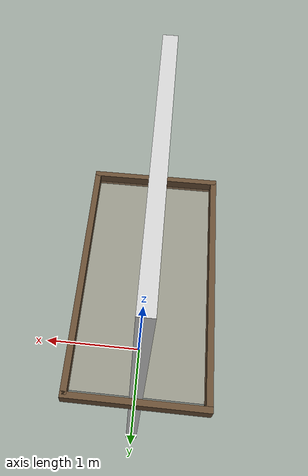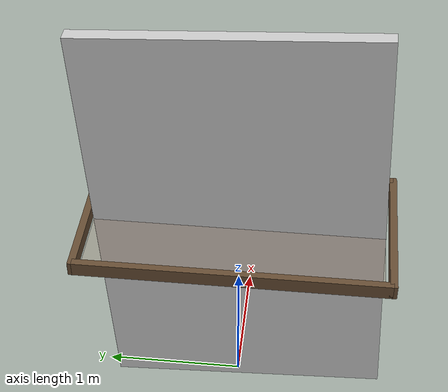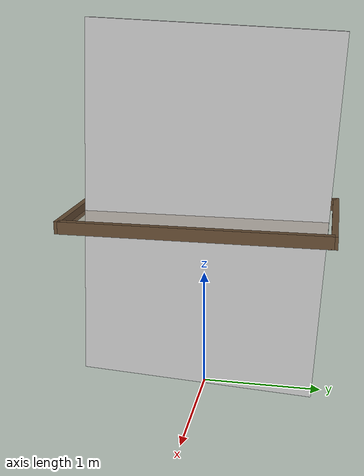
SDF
<?xml version="1.0"?>
<!--
  Environnement de test simple : Vitre unique 1×2m
  Utilisé pour les tests basiques de navigation et nettoyage
-->
<sdf version="1.7">
<world name="simple_window">

  <!-- Éclairage -->
  <include>
    <uri>model://sun</uri>
  </include>

  <!-- Environnement -->
  <scene>
    <ambient>0.8 0.8 0.8 1</ambient>
    <background>0.9 0.9 0.95 1</background>
    <shadows>true</shadows>
  </scene>

  <!-- Physique -->
  <physics type="ode">
    <real_time_factor>1.0</real_time_factor>
    <real_time_update_rate>1000</real_time_update_rate>
    <max_step_size>0.001</max_step_size>
    <gravity>0 0 -9.81</gravity>
  </physics>

  <!-- ==========================================
       VITRE PRINCIPALE (1×2 m)
       ========================================== -->
  <model name="main_window">
    <pose>0 0 1.5 0 0 0</pose>
    <static>true</static>

    <link name="glass_pane">
      <pose>0 0 0 0 0 0</pose>

      <collision name="collision">
        <geometry>
          <box>
            <size>1.0 2.0 0.01</size>
          </box>
        </geometry>
        <surface>
          <friction>
            <ode>
              <mu>0.1</mu>
              <mu2>0.1</mu2>
            </ode>
          </friction>
          <contact>
            <ode>
              <kp>1000000</kp>
              <kd>100</kd>
            </ode>
          </contact>
        </surface>
      </collision>

      <visual name="visual">
        <geometry>
          <box>
            <size>1.0 2.0 0.01</size>
          </box>
        </geometry>
        <material>
          <script>
            <name>Gazebo/Glass</name>
            <uri>file://media/materials/scripts/gazebo.material</uri>
          </script>
          <transparency>0.3</transparency>
          <ambient>0.9 0.9 1.0 0.5</ambient>
          <diffuse>0.9 0.9 1.0 0.5</diffuse>
        </material>
      </visual>

      <inertial>
        <mass>25.0</mass>
        <inertia>
          <ixx>8.33</ixx>
          <iyy>2.08</iyy>
          <izz>10.42</izz>
        </inertia>
      </inertial>
    </link>

    <!-- Couche de saleté simulée -->
    <link name="dirt_layer">
      <pose>0 0 0.005 0 0 0</pose>
      <visual name="dirt_visual">
        <geometry>
          <box>
            <size>1.0 2.0 0.001</size>
          </box>
        </geometry>
        <material>
          <ambient>0.6 0.5 0.4 0.3</ambient>
          <diffuse>0.6 0.5 0.4 0.3</diffuse>
        </material>
      </visual>
    </link>
    <joint name="dirt_joint" type="fixed">
      <parent>glass_pane</parent>
      <child>dirt_layer</child>
    </joint>
  </model>

  <!-- ==========================================
       MUR DE SUPPORT (derrière la vitre)
       ========================================== -->
  <model name="support_wall">
    <pose>0 0 1.5 -0.05 0 0</pose>
    <static>true</static>

    <link name="wall">
      <collision name="collision">
        <geometry>
          <box>
            <size>0.1 2.0 3.0</size>
          </box>
        </geometry>
      </collision>

      <visual name="visual">
        <geometry>
          <box>
            <size>0.1 2.0 3.0</size>
          </box>
        </geometry>
        <material>
          <ambient>0.8 0.8 0.8 1</ambient>
        </material>
      </visual>
    </link>
  </model>

  <!-- ==========================================
       CADRE DE FENÊTRE
       ========================================== -->
  <model name="window_frame_top">
    <pose>0 1.05 1.5 0 0 0</pose>
    <static>true</static>
    <link name="frame">
      <collision name="collision">
        <geometry>
          <box>
            <size>1.1 0.05 0.1</size>
          </box>
        </geometry>
      </collision>
      <visual name="visual">
        <geometry>
          <box>
            <size>1.1 0.05 0.1</size>
          </box>
        </geometry>
        <material>
          <ambient>0.4 0.3 0.2 1</ambient>
        </material>
      </visual>
    </link>
  </model>

  <model name="window_frame_bottom">
    <pose>0 -1.05 1.5 0 0 0</pose>
    <static>true</static>
    <link name="frame">
      <collision name="collision">
        <geometry>
          <box>
            <size>1.1 0.05 0.1</size>
          </box>
        </geometry>
      </collision>
      <visual name="visual">
        <geometry>
          <box>
            <size>1.1 0.05 0.1</size>
          </box>
        </geometry>
        <material>
          <ambient>0.4 0.3 0.2 1</ambient>
        </material>
      </visual>
    </link>
  </model>

  <model name="window_frame_left">
    <pose>-0.525 0 1.5 0 0 0</pose>
    <static>true</static>
    <link name="frame">
      <collision name="collision">
        <geometry>
          <box>
            <size>0.05 2.1 0.1</size>
          </box>
        </geometry>
      </collision>
      <visual name="visual">
        <geometry>
          <box>
            <size>0.05 2.1 0.1</size>
          </box>
        </geometry>
        <material>
          <ambient>0.4 0.3 0.2 1</ambient>
        </material>
      </visual>
    </link>
  </model>

  <model name="window_frame_right">
    <pose>0.525 0 1.5 0 0 0</pose>
    <static>true</static>
    <link name="frame">
      <collision name="collision">
        <geometry>
          <box>
            <size>0.05 2.1 0.1</size>
          </box>
        </geometry>
      </collision>
      <visual name="visual">
        <geometry>
          <box>
            <size>0.05 2.1 0.1</size>
          </box>
        </geometry>
        <material>
          <ambient>0.4 0.3 0.2 1</ambient>
        </material>
      </visual>
    </link>
  </model>

  <!-- Lumière directionnelle pour éclairage réaliste -->
  <light type="directional" name="window_light">
    <pose>0 0 3 0.5 -0.5 -1</pose>
    <diffuse>0.9 0.9 0.85 1</diffuse>
    <specular>0.2 0.2 0.2 1</specular>
    <attenuation>
      <range>10</range>
      <constant>1.0</constant>
      <linear>0.1</linear>
      <quadratic>0.01</quadratic>
    </attenuation>
    <cast_shadows>true</cast_shadows>
  </light>

</world>
</sdf>
